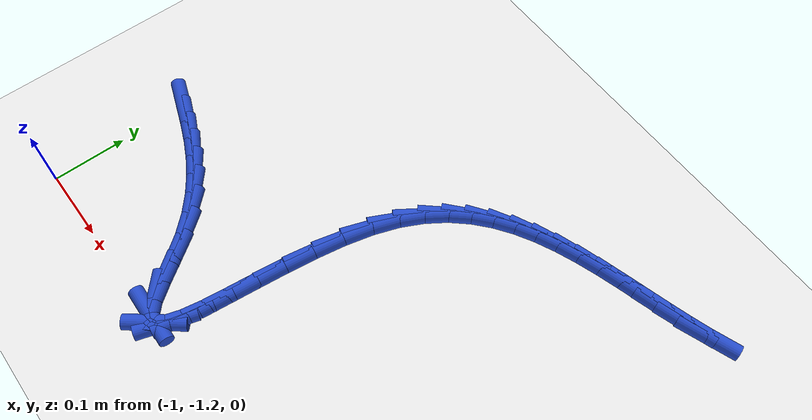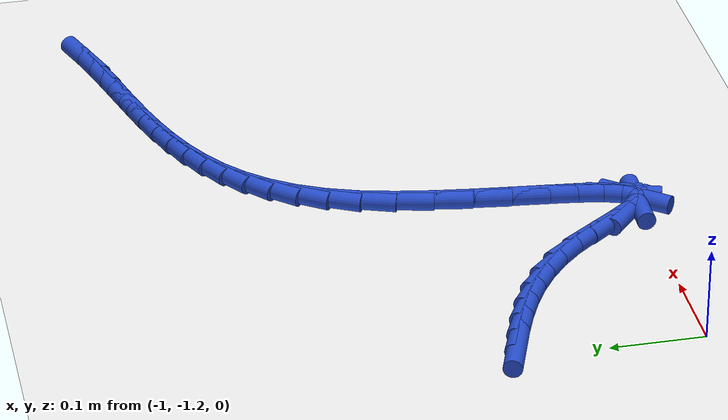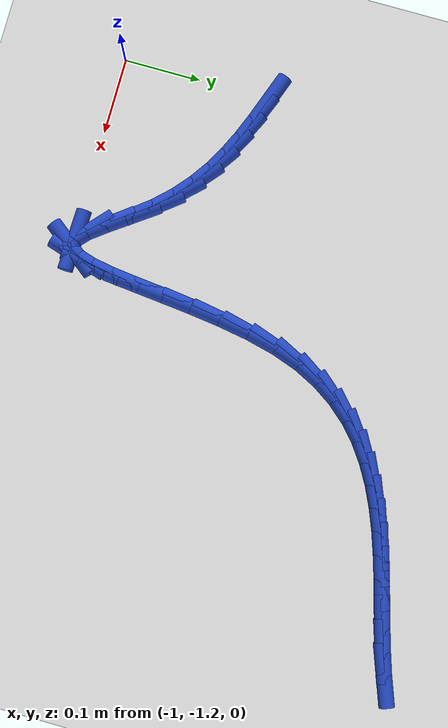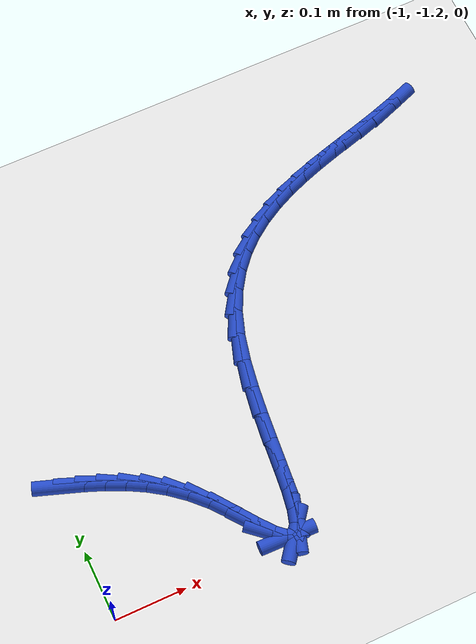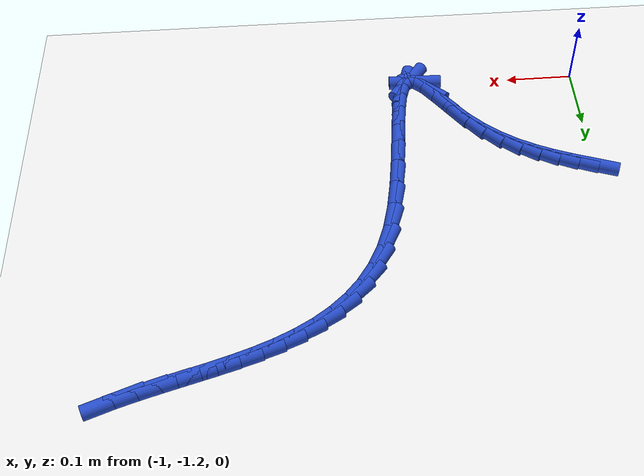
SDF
<sdf version="1.6">
 <world name="default">
  <model name="ground_plane">
   <static>1</static>
   <link name="link">
    <collision name="collision">
     <geometry><plane><normal>0 0 1</normal><size>100 100</size></plane></geometry>
     <surface><friction><ode><mu>100</mu><mu2>50</mu2></ode></friction></surface>
    </collision>
    <visual name="visual">
     <cast_shadows>0</cast_shadows>
     <geometry><plane><normal>0 0 1</normal><size>100 100</size></plane></geometry>
     <material>
      <script><uri>file://media/materials/scripts/gazebo.material</uri><name>Gazebo/WhiteGlow</name></script>
     </material>
    </visual>
   </link>
  </model>
  <model name="line">
   <link name="link_226">
    <pose>-0.9922647598778589 -1.0078452677863254 0.01 0 1.57 -0.34428240929256454</pose>
    <collision name="collision">
     <geometry><cylinder><radius>0.01</radius><length>0.08</length></cylinder></geometry>
    </collision>
    <visual name="visual">
     <material>
      <script><name>Gazebo/Blue</name><uri>file://media/materials/scripts/gazebo.material</uri></script>
     </material>
     <geometry><cylinder><radius>0.01</radius><length>0.08</length></cylinder></geometry>
    </visual>
   </link>
   <link name="link_227">
    <pose>-0.9652049228483592 -1.0175479101630793 0.01 0 1.57 -0.3817688867036604</pose>
    <collision name="collision">
     <geometry><cylinder><radius>0.01</radius><length>0.08</length></cylinder></geometry>
    </collision>
    <visual name="visual">
     <material>
      <script><name>Gazebo/Blue</name><uri>file://media/materials/scripts/gazebo.material</uri></script>
     </material>
     <geometry><cylinder><radius>0.01</radius><length>0.08</length></cylinder></geometry>
    </visual>
   </link>
   <link name="link_228">
    <pose>-0.9390594786380119 -1.028044397508036 0.01 0 1.57 -0.43805326429455</pose>
    <collision name="collision">
     <geometry><cylinder><radius>0.01</radius><length>0.08</length></cylinder></geometry>
    </collision>
    <visual name="visual">
     <material>
      <script><name>Gazebo/Blue</name><uri>file://media/materials/scripts/gazebo.material</uri></script>
     </material>
     <geometry><cylinder><radius>0.01</radius><length>0.08</length></cylinder></geometry>
    </visual>
   </link>
   <link name="link_229">
    <pose>-0.9138448024838358 -1.0398550653539662 0.01 0 1.57 -0.5122234344808406</pose>
    <collision name="collision">
     <geometry><cylinder><radius>0.01</radius><length>0.08</length></cylinder></geometry>
    </collision>
    <visual name="visual">
     <material>
      <script><name>Gazebo/Blue</name><uri>file://media/materials/scripts/gazebo.material</uri></script>
     </material>
     <geometry><cylinder><radius>0.01</radius><length>0.08</length></cylinder></geometry>
    </visual>
   </link>
   <link name="link_230">
    <pose>-0.8895772696228486 -1.05350024923364 0.01 0 1.57 -0.601661343943004</pose>
    <collision name="collision">
     <geometry><cylinder><radius>0.01</radius><length>0.08</length></cylinder></geometry>
    </collision>
    <visual name="visual">
     <material>
      <script><name>Gazebo/Blue</name><uri>file://media/materials/scripts/gazebo.material</uri></script>
     </material>
     <geometry><cylinder><radius>0.01</radius><length>0.08</length></cylinder></geometry>
    </visual>
   </link>
   <link name="link_231">
    <pose>-0.8662732552920688 -1.0695002846798267 0.01 0 1.57 -0.7018804396303661</pose>
    <collision name="collision">
     <geometry><cylinder><radius>0.01</radius><length>0.08</length></cylinder></geometry>
    </collision>
    <visual name="visual">
     <material>
      <script><name>Gazebo/Blue</name><uri>file://media/materials/scripts/gazebo.material</uri></script>
     </material>
     <geometry><cylinder><radius>0.01</radius><length>0.08</length></cylinder></geometry>
    </visual>
   </link>
   <link name="link_232">
    <pose>-0.8439491347285145 -1.0883755072252972 0.01 0 1.57 -0.8070214891119686</pose>
    <collision name="collision">
     <geometry><cylinder><radius>0.01</radius><length>0.08</length></cylinder></geometry>
    </collision>
    <visual name="visual">
     <material>
      <script><name>Gazebo/Blue</name><uri>file://media/materials/scripts/gazebo.material</uri></script>
     </material>
     <geometry><cylinder><radius>0.01</radius><length>0.08</length></cylinder></geometry>
    </visual>
   </link>
   <link name="link_233">
    <pose>-0.8226212831692046 -1.11064625240282 0.01 0 1.57 -0.904969563442373</pose>
    <collision name="collision">
     <geometry><cylinder><radius>0.01</radius><length>0.08</length></cylinder></geometry>
    </collision>
    <visual name="visual">
     <material>
      <script><name>Gazebo/Blue</name><uri>file://media/materials/scripts/gazebo.material</uri></script>
     </material>
     <geometry><cylinder><radius>0.01</radius><length>0.08</length></cylinder></geometry>
    </visual>
   </link>
   <link name="link_234">
    <pose>-0.8023520264068181 -1.1364510553247613 0.01 0 1.57 -0.949048101888272</pose>
    <collision name="collision">
     <geometry><cylinder><radius>0.01</radius><length>0.08</length></cylinder></geometry>
    </collision>
    <visual name="visual">
     <material>
      <script><name>Gazebo/Blue</name><uri>file://media/materials/scripts/gazebo.material</uri></script>
     </material>
     <geometry><cylinder><radius>0.01</radius><length>0.08</length></cylinder></geometry>
    </visual>
   </link>
   <link name="link_235">
    <pose>-0.7836021204616037 -1.1626179181578757 0.01 0 1.57 -0.9178462281767389</pose>
    <collision name="collision">
     <geometry><cylinder><radius>0.01</radius><length>0.08</length></cylinder></geometry>
    </collision>
    <visual name="visual">
     <material>
      <script><name>Gazebo/Blue</name><uri>file://media/materials/scripts/gazebo.material</uri></script>
     </material>
     <geometry><cylinder><radius>0.01</radius><length>0.08</length></cylinder></geometry>
    </visual>
   </link>
   <link name="link_236">
    <pose>-0.7670368323156205 -1.1842755737114063 0.01 0 1.57 -0.7305571149903604</pose>
    <collision name="collision">
     <geometry><cylinder><radius>0.01</radius><length>0.08</length></cylinder></geometry>
    </collision>
    <visual name="visual">
     <material>
      <script><name>Gazebo/Blue</name><uri>file://media/materials/scripts/gazebo.material</uri></script>
     </material>
     <geometry><cylinder><radius>0.01</radius><length>0.08</length></cylinder></geometry>
    </visual>
   </link>
   <link name="link_237">
    <pose>-0.7533176743135613 -1.1965668599347394 0.01 0 1.57 -0.02961148541612025</pose>
    <collision name="collision">
     <geometry><cylinder><radius>0.01</radius><length>0.08</length></cylinder></geometry>
    </collision>
    <visual name="visual">
     <material>
      <script><name>Gazebo/Blue</name><uri>file://media/materials/scripts/gazebo.material</uri></script>
     </material>
     <geometry><cylinder><radius>0.01</radius><length>0.08</length></cylinder></geometry>
    </visual>
   </link>
   <link name="link_238">
    <pose>-0.7426704774152848 -1.1968822314325926 0.01 0 1.57 0.9098757291296903</pose>
    <collision name="collision">
     <geometry><cylinder><radius>0.01</radius><length>0.08</length></cylinder></geometry>
    </collision>
    <visual name="visual">
     <material>
      <script><name>Gazebo/Blue</name><uri>file://media/materials/scripts/gazebo.material</uri></script>
     </material>
     <geometry><cylinder><radius>0.01</radius><length>0.08</length></cylinder></geometry>
    </visual>
   </link>
   <link name="link_239">
    <pose>-0.7345734320658517 -1.1864691110707801 0.01 0 1.57 1.2658600616820774</pose>
    <collision name="collision">
     <geometry><cylinder><radius>0.01</radius><length>0.08</length></cylinder></geometry>
    </collision>
    <visual name="visual">
     <material>
      <script><name>Gazebo/Blue</name><uri>file://media/materials/scripts/gazebo.material</uri></script>
     </material>
     <geometry><cylinder><radius>0.01</radius><length>0.08</length></cylinder></geometry>
    </visual>
   </link>
   <link name="link_240">
    <pose>-0.7284311489961827 -1.1669545087178055 0.01 0 1.57 1.3954008093554933</pose>
    <collision name="collision">
     <geometry><cylinder><radius>0.01</radius><length>0.08</length></cylinder></geometry>
    </collision>
    <visual name="visual">
     <material>
      <script><name>Gazebo/Blue</name><uri>file://media/materials/scripts/gazebo.material</uri></script>
     </material>
     <geometry><cylinder><radius>0.01</radius><length>0.08</length></cylinder></geometry>
    </visual>
   </link>
   <link name="link_241">
    <pose>-0.7236482389371988 -1.1399654342421728 0.01 0 1.57 1.4490101206304935</pose>
    <collision name="collision">
     <geometry><cylinder><radius>0.01</radius><length>0.08</length></cylinder></geometry>
    </collision>
    <visual name="visual">
     <material>
      <script><name>Gazebo/Blue</name><uri>file://media/materials/scripts/gazebo.material</uri></script>
     </material>
     <geometry><cylinder><radius>0.01</radius><length>0.08</length></cylinder></geometry>
    </visual>
   </link>
   <link name="link_242">
    <pose>-0.7196293126198199 -1.1071288975123859 0.01 0 1.57 1.4672648430503514</pose>
    <collision name="collision">
     <geometry><cylinder><radius>0.01</radius><length>0.08</length></cylinder></geometry>
    </collision>
    <visual name="visual">
     <material>
      <script><name>Gazebo/Blue</name><uri>file://media/materials/scripts/gazebo.material</uri></script>
     </material>
     <geometry><cylinder><radius>0.01</radius><length>0.08</length></cylinder></geometry>
    </visual>
   </link>
   <link name="link_243">
    <pose>-0.715778980774967 -1.070071908396949 0.01 0 1.57 1.4633409572267935</pose>
    <collision name="collision">
     <geometry><cylinder><radius>0.01</radius><length>0.08</length></cylinder></geometry>
    </collision>
    <visual name="visual">
     <material>
      <script><name>Gazebo/Blue</name><uri>file://media/materials/scripts/gazebo.material</uri></script>
     </material>
     <geometry><cylinder><radius>0.01</radius><length>0.08</length></cylinder></geometry>
    </visual>
   </link>
   <link name="link_244">
    <pose>-0.7115018541335605 -1.0304214767643656 0.01 0 1.57 1.4410584734413978</pose>
    <collision name="collision">
     <geometry><cylinder><radius>0.01</radius><length>0.08</length></cylinder></geometry>
    </collision>
    <visual name="visual">
     <material>
      <script><name>Gazebo/Blue</name><uri>file://media/materials/scripts/gazebo.material</uri></script>
     </material>
     <geometry><cylinder><radius>0.01</radius><length>0.08</length></cylinder></geometry>
    </visual>
   </link>
   <link name="link_245">
    <pose>-0.7062025434265212 -0.9898046124831396 0.01 0 1.57 1.3993838418431457</pose>
    <collision name="collision">
     <geometry><cylinder><radius>0.01</radius><length>0.08</length></cylinder></geometry>
    </collision>
    <visual name="visual">
     <material>
      <script><name>Gazebo/Blue</name><uri>file://media/materials/scripts/gazebo.material</uri></script>
     </material>
     <geometry><cylinder><radius>0.01</radius><length>0.08</length></cylinder></geometry>
    </visual>
   </link>
   <link name="link_246">
    <pose>-0.6992856593847694 -0.9498483254217749 0.01 0 1.57 1.3330095294890272</pose>
    <collision name="collision">
     <geometry><cylinder><radius>0.01</radius><length>0.08</length></cylinder></geometry>
    </collision>
    <visual name="visual">
     <material>
      <script><name>Gazebo/Blue</name><uri>file://media/materials/scripts/gazebo.material</uri></script>
     </material>
     <geometry><cylinder><radius>0.01</radius><length>0.08</length></cylinder></geometry>
    </visual>
   </link>
   <link name="link_247">
    <pose>-0.6901558127392258 -0.9121796254487757 0.01 0 1.57 1.2329559133639336</pose>
    <collision name="collision">
     <geometry><cylinder><radius>0.01</radius><length>0.08</length></cylinder></geometry>
    </collision>
    <visual name="visual">
     <material>
      <script><name>Gazebo/Blue</name><uri>file://media/materials/scripts/gazebo.material</uri></script>
     </material>
     <geometry><cylinder><radius>0.01</radius><length>0.08</length></cylinder></geometry>
    </visual>
   </link>
   <link name="link_248">
    <pose>-0.678261588522403 -0.878322744092859 0.01 0 1.57 1.1104660382033342</pose>
    <collision name="collision">
     <geometry><cylinder><radius>0.01</radius><length>0.08</length></cylinder></geometry>
    </collision>
    <visual name="visual">
     <material>
      <script><name>Gazebo/Blue</name><uri>file://media/materials/scripts/gazebo.material</uri></script>
     </material>
     <geometry><cylinder><radius>0.01</radius><length>0.08</length></cylinder></geometry>
    </visual>
   </link>
   <link name="link_249">
    <pose>-0.6635461063135984 -0.8486460687227001 0.01 0 1.57 0.9815851379881352</pose>
    <collision name="collision">
     <geometry><cylinder><radius>0.01</radius><length>0.08</length></cylinder></geometry>
    </collision>
    <visual name="visual">
     <material>
      <script><name>Gazebo/Blue</name><uri>file://media/materials/scripts/gazebo.material</uri></script>
     </material>
     <geometry><cylinder><radius>0.01</radius><length>0.08</length></cylinder></geometry>
    </visual>
   </link>
   <link name="link_250">
    <pose>-0.6462638004991563 -0.8227903703978735 0.01 0 1.57 0.8523401959727201</pose>
    <collision name="collision">
     <geometry><cylinder><radius>0.01</radius><length>0.08</length></cylinder></geometry>
    </collision>
    <visual name="visual">
     <material>
      <script><name>Gazebo/Blue</name><uri>file://media/materials/scripts/gazebo.material</uri></script>
     </material>
     <geometry><cylinder><radius>0.01</radius><length>0.08</length></cylinder></geometry>
    </visual>
   </link>
   <link name="link_251">
    <pose>-0.6266739571438561 -0.8003850806583537 0.01 0 1.57 0.7290018504076756</pose>
    <collision name="collision">
     <geometry><cylinder><radius>0.01</radius><length>0.08</length></cylinder></geometry>
    </collision>
    <visual name="visual">
     <material>
      <script><name>Gazebo/Blue</name><uri>file://media/materials/scripts/gazebo.material</uri></script>
     </material>
     <geometry><cylinder><radius>0.01</radius><length>0.08</length></cylinder></geometry>
    </visual>
   </link>
   <link name="link_252">
    <pose>-0.6050358623124769 -0.7810596310441145 0.01 0 1.57 0.6169222851862693</pose>
    <collision name="collision">
     <geometry><cylinder><radius>0.01</radius><length>0.08</length></cylinder></geometry>
    </collision>
    <visual name="visual">
     <material>
      <script><name>Gazebo/Blue</name><uri>file://media/materials/scripts/gazebo.material</uri></script>
     </material>
     <geometry><cylinder><radius>0.01</radius><length>0.08</length></cylinder></geometry>
    </visual>
   </link>
   <link name="link_253">
    <pose>-0.5816088020697978 -0.7644434530951294 0.01 0 1.57 0.5196437903395752</pose>
    <collision name="collision">
     <geometry><cylinder><radius>0.01</radius><length>0.08</length></cylinder></geometry>
    </collision>
    <visual name="visual">
     <material>
      <script><name>Gazebo/Blue</name><uri>file://media/materials/scripts/gazebo.material</uri></script>
     </material>
     <geometry><cylinder><radius>0.01</radius><length>0.08</length></cylinder></geometry>
    </visual>
   </link>
   <link name="link_254">
    <pose>-0.5566520624805986 -0.7501659783513728 0.01 0 1.57 0.4388169611076535</pose>
    <collision name="collision">
     <geometry><cylinder><radius>0.01</radius><length>0.08</length></cylinder></geometry>
    </collision>
    <visual name="visual">
     <material>
      <script><name>Gazebo/Blue</name><uri>file://media/materials/scripts/gazebo.material</uri></script>
     </material>
     <geometry><cylinder><radius>0.01</radius><length>0.08</length></cylinder></geometry>
    </visual>
   </link>
   <link name="link_255">
    <pose>-0.5304249296096581 -0.7378566383528181 0.01 0 1.57 0.37468457899805807</pose>
    <collision name="collision">
     <geometry><cylinder><radius>0.01</radius><length>0.08</length></cylinder></geometry>
    </collision>
    <visual name="visual">
     <material>
      <script><name>Gazebo/Blue</name><uri>file://media/materials/scripts/gazebo.material</uri></script>
     </material>
     <geometry><cylinder><radius>0.01</radius><length>0.08</length></cylinder></geometry>
    </visual>
   </link>
   <link name="link_256">
    <pose>-0.5031866895217559 -0.7271448646394393 0.01 0 1.57 0.3267183229064432</pose>
    <collision name="collision">
     <geometry><cylinder><radius>0.01</radius><length>0.08</length></cylinder></geometry>
    </collision>
    <visual name="visual">
     <material>
      <script><name>Gazebo/Blue</name><uri>file://media/materials/scripts/gazebo.material</uri></script>
     </material>
     <geometry><cylinder><radius>0.01</radius><length>0.08</length></cylinder></geometry>
    </visual>
   </link>
   <link name="link_257">
    <pose>-0.47519662828167114 -0.7176600887512105 0.01 0 1.57 0.29414634916349663</pose>
    <collision name="collision">
     <geometry><cylinder><radius>0.01</radius><length>0.08</length></cylinder></geometry>
    </collision>
    <visual name="visual">
     <material>
      <script><name>Gazebo/Blue</name><uri>file://media/materials/scripts/gazebo.material</uri></script>
     </material>
     <geometry><cylinder><radius>0.01</radius><length>0.08</length></cylinder></geometry>
    </visual>
   </link>
   <link name="link_258">
    <pose>-0.44671403195418313 -0.7090317422281052 0.01 0 1.57 0.27630104412775114</pose>
    <collision name="collision">
     <geometry><cylinder><radius>0.01</radius><length>0.08</length></cylinder></geometry>
    </collision>
    <visual name="visual">
     <material>
      <script><name>Gazebo/Blue</name><uri>file://media/materials/scripts/gazebo.material</uri></script>
     </material>
     <geometry><cylinder><radius>0.01</radius><length>0.08</length></cylinder></geometry>
    </visual>
   </link>
   <link name="link_259">
    <pose>-0.41799818660407134 -0.7008892566100978 0.01 0 1.57 0.27281627744951203</pose>
    <collision name="collision">
     <geometry><cylinder><radius>0.01</radius><length>0.08</length></cylinder></geometry>
    </collision>
    <visual name="visual">
     <material>
      <script><name>Gazebo/Blue</name><uri>file://media/materials/scripts/gazebo.material</uri></script>
     </material>
     <geometry><cylinder><radius>0.01</radius><length>0.08</length></cylinder></geometry>
    </visual>
   </link>
   <link name="link_260">
    <pose>-0.38930837829611487 -0.6928620634371614 0.01 0 1.57 0.2837236252824906</pose>
    <collision name="collision">
     <geometry><cylinder><radius>0.01</radius><length>0.08</length></cylinder></geometry>
    </collision>
    <visual name="visual">
     <material>
      <script><name>Gazebo/Blue</name><uri>file://media/materials/scripts/gazebo.material</uri></script>
     </material>
     <geometry><cylinder><radius>0.01</radius><length>0.08</length></cylinder></geometry>
    </visual>
   </link>
   <link name="link_261">
    <pose>-0.36090389309509296 -0.6845795942492706 0.01 0 1.57 0.30948000260800373</pose>
    <collision name="collision">
     <geometry><cylinder><radius>0.01</radius><length>0.08</length></cylinder></geometry>
    </collision>
    <visual name="visual">
     <material>
      <script><name>Gazebo/Blue</name><uri>file://media/materials/scripts/gazebo.material</uri></script>
     </material>
     <geometry><cylinder><radius>0.01</radius><length>0.08</length></cylinder></geometry>
    </visual>
   </link>
   <link name="link_262">
    <pose>-0.333044017065785 -0.6756712805863989 0.01 0 1.57 0.35092994003018413</pose>
    <collision name="collision">
     <geometry><cylinder><radius>0.01</radius><length>0.08</length></cylinder></geometry>
    </collision>
    <visual name="visual">
     <material>
      <script><name>Gazebo/Blue</name><uri>file://media/materials/scripts/gazebo.material</uri></script>
     </material>
     <geometry><cylinder><radius>0.01</radius><length>0.08</length></cylinder></geometry>
    </visual>
   </link>
  </model>
 </world>
</sdf>
